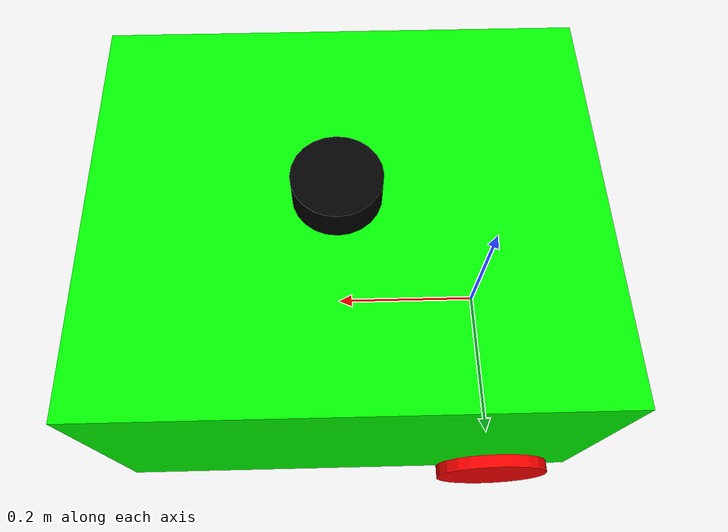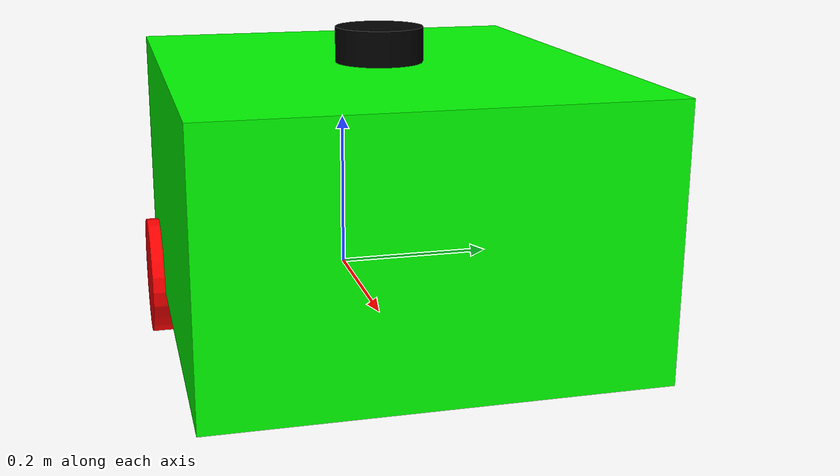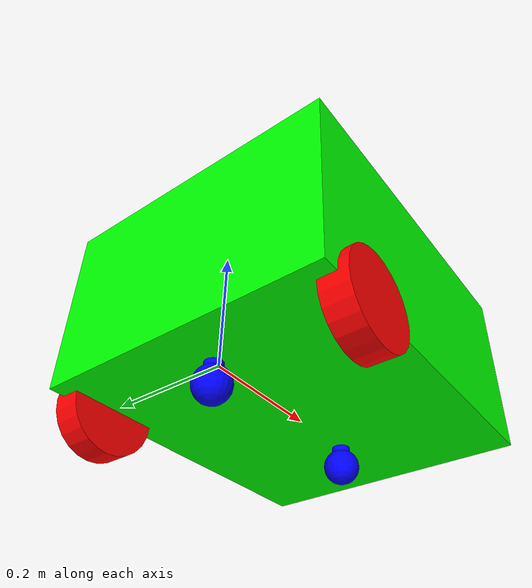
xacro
<?xml version="1.0"?>
<robot xmlns:xacro="http://www.ros.org/wiki/xacro" name="waiter_robot">

    <!-- Include all component files -->
    <xacro:include filename="properties.xacro"/>
    <xacro:include filename="inertial_macros.xacro"/>
    <xacro:include filename="chassis.xacro"/>
    <xacro:include filename="wheels.xacro"/>
    <xacro:include filename="caster_wheel.xacro"/>
    <xacro:include filename="lidar.xacro"/>

    <!-- Argument to switch between simulation and real hardware -->
    <xacro:arg name="use_sim" default="false"/>

    <!-- Include appropriate control interface based on use_sim argument -->
    <xacro:if value="$(arg use_sim)">
        <xacro:include filename="gazebo_control.xacro"/>  <!-- For Gazebo Fortress simulation -->
    </xacro:if>

    <xacro:unless value="$(arg use_sim)">
        <xacro:include filename="control.xacro"/>  <!-- For real robot with Arduino -->
    </xacro:unless>

    <!-- Base Link - Main reference frame for the robot -->
    <link name="base_link"/>

    <!-- Base Footprint Link - Projection of robot on the ground (for navigation) -->
    <link name="base_footprint"/>

    <!-- Joint connecting base_link to base_footprint -->
    <!-- IMPORTANT: This should place base_footprint on the ground, base_link at wheel axle height -->
    <joint name="base_footprint_joint" type="fixed">
        <parent link="base_link"/>
        <child link="base_footprint"/>
        <origin xyz="0 0 -0.0325" rpy="0 0 0"/>  <!-- Offset = -wheel_radius to put footprint on ground -->
    </joint>

</robot>

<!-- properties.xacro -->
<robot xmlns:xacro="http://www.ros.org/wiki/xacro">

                                <!-- Properties -->
    <!-- Chassis -->
    <xacro:property name="chassis_length" value="0.58"/>
    <xacro:property name="chassis_width" value="0.49"/>
    <xacro:property name="chassis_height" value="0.30"/>
    <xacro:property name="chassis_mass" value="15.0"/>
    <!-- Wheels -->
    <xacro:property name="wheel_offset_x" value="0.1"/>
    <xacro:property name="wheel_offset_y" value="0.238"/>
    <xacro:property name="wheel_offset_z" value="-0.025"/>
    <xacro:property name="wheel_thickness" value="0.045"/>
    <xacro:property name="wheel_radius" value="0.0738"/>
    <xacro:property name="wheel_mass" value="15.0"/>
    <!-- Front caster -->
    <xacro:property name="caster_front_radius" value="0.03"/>
    <xacro:property name="caster_front_mass" value="0.045"/>
    <xacro:property name="caster_front_offset_x" value="0.42"/>  <!-- front -->
    <xacro:property name="caster_front_offset_z" value="-0.035"/>

    <!-- Back caster -->
    <xacro:property name="caster_back_radius" value="0.03"/>
    <xacro:property name="caster_back_mass" value="0.045"/>
    <xacro:property name="caster_back_offset_x" value="0.09"/> <!-- back -->
    <xacro:property name="caster_back_offset_z" value="-0.035"/>

                                <!-- Colors -->
    <material name="white">
        <color rgba="1 1 1 1"/>
    </material>

    <material name="red">
        <color rgba="1 0 0 1"/>
    </material>

    <material name="green">
        <color rgba="0 1 0 1"/>
    </material>

    <material name="blue">
        <color rgba="0 0 1 1"/>
    </material>

    <material name="black">
        <color rgba="0 0 0 1"/>
    </material>
</robot>

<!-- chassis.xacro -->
<robot xmlns:xacro="http://www.ros.org/wiki/xacro">

    <!-- Chassis Link - Main body of the waiter robot -->
    <link name="chassis_link">

        <!-- Visual representation -->
        <visual>
            <geometry>
                <box size="${chassis_length} ${chassis_width} ${chassis_height}"/>
            </geometry>
            <origin xyz="${chassis_length/2} 0.0 ${chassis_height/2}"/>
            <material name="green"/>
        </visual>

        <!-- Collision geometry (for physics and obstacle detection) -->
        <collision>
            <geometry>
                <box size="${chassis_length} ${chassis_width} ${chassis_height}"/>
            </geometry>
            <origin xyz="${chassis_length/2} 0.0 ${chassis_height/2}"/>
        </collision>

        <!-- Inertial properties for physics simulation -->
        <xacro:inertial_box mass="${chassis_mass}"
                            x="${chassis_length}"
                            y="${chassis_width}"
                            z="${chassis_height}">
            <origin xyz="${chassis_length/2} 0 ${chassis_height/2}" rpy="0 0 0"/>
        </xacro:inertial_box>
    </link>

    <!-- Chassis Joint - Connects chassis to base_link -->
    <joint name="chassis_joint" type="fixed">
        <parent link="base_link"/>
        <child link="chassis_link"/>
        <origin xyz="-${wheel_offset_x} 0.0 0.0"/>  <!-- Positions chassis relative to wheel axle -->
    </joint>

    <!-- Gazebo-specific properties -->
    <gazebo reference="chassis_link">
        <material>Gazebo/Grey</material>  <!-- Visual appearance -->

        <!-- Surface contact properties -->
        <mu1>0.1</mu1>  <!-- Low friction - chassis shouldn't drag on ground -->
        <mu2>0.1</mu2>
        <kp>1000000.0</kp>  <!-- Contact stiffness -->
        <kd>100.0</kd>  <!-- Contact damping -->

        <!-- Make chassis slightly reflective for better visualization -->
        <gravity>true</gravity>
        <self_collide>false</self_collide>  <!-- Chassis won't collide with itself -->
    </gazebo>

</robot>

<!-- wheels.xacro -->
<robot xmlns:xacro="http://www.ros.org/wiki/xacro">

    <!-- Wheel Link Macro -->
    <xacro:macro name="wheel_link" params="link_name">
        <link name="${link_name}">
            <!-- Visual representation -->
            <visual>
                <geometry>
                    <cylinder radius="${wheel_radius}" length="${wheel_thickness}"/>
                </geometry>
                <material name="red"/>
            </visual>

            <!-- Collision geometry - IMPORTANT: Use cylinder, not sphere! -->
            <collision>
                <geometry>
                    <cylinder radius="${wheel_radius}" length="${wheel_thickness}"/>  <!-- Changed from sphere -->
                </geometry>
            </collision>

            <!-- Inertial properties for physics simulation -->
            <xacro:inertial_cylinder mass="${wheel_mass}" length="${wheel_thickness}" radius="${wheel_radius}">
                <origin xyz="0 0 0" rpy="0 0 0"/>
            </xacro:inertial_cylinder>
        </link>

        <!-- Gazebo-specific properties for realistic wheel physics -->
        <gazebo reference="${link_name}">
            <material>Gazebo/Black</material>  <!-- Visual appearance in Gazebo -->

            <!-- Friction coefficients for realistic wheel behavior -->
            <mu1>1.0</mu1>  <!-- Friction coefficient in primary direction (forward/backward) -->
            <mu2>1.0</mu2>  <!-- Friction coefficient in secondary direction (sideways) -->
            <kp>1000000.0</kp>  <!-- Contact stiffness (prevents sinking into ground) -->
            <kd>100.0</kd>  <!-- Contact damping (reduces bouncing) -->
            <minDepth>0.001</minDepth>  <!-- Minimum penetration before contact (prevents jitter) -->
            <maxVel>1.0</maxVel>  <!-- Maximum contact correction velocity -->

            <!-- Surface properties -->
            <fdir1>1 0 0</fdir1>  <!-- Primary friction direction (longitudinal) -->
        </gazebo>
    </xacro:macro>

    <!-- Wheel Joint Macro -->
    <xacro:macro name="wheel_joint" params="joint_name wheel_name y_offset">
        <joint name="${joint_name}" type="continuous">
            <origin xyz="0 ${y_offset} 0" rpy="${-pi/2} 0.0 0.0"/>  <!-- Rotates wheel to correct orientation -->
            <parent link="base_link"/>
            <child link="${wheel_name}"/>
            <axis xyz="0.0 0.0 1"/>  <!-- Rotation axis (Z in wheel's rotated frame = Y in base_link) -->

            <!-- Joint dynamics for smoother simulation -->
            <dynamics damping="0.1" friction="0.1"/>  <!-- Adds realistic resistance -->

            <!-- Joint limits (continuous = unlimited rotation) -->
            <limit effort="30" velocity="20.0"/>  <!-- Max torque: 30 Nm, Max velocity: 20 rad/s -->
        </joint>
    </xacro:macro>

    <!-- Left Wheel Link -->
    <xacro:wheel_link link_name="left_wheel_link"/>

    <!-- Left Wheel Joint -->
    <xacro:wheel_joint joint_name="left_wheel_joint" wheel_name="left_wheel_link" y_offset="${wheel_offset_y}"/>

    <!-- Right Wheel Link -->
    <xacro:wheel_link link_name="right_wheel_link"/>

    <!-- Right Wheel Joint -->
    <xacro:wheel_joint joint_name="right_wheel_joint" wheel_name="right_wheel_link" y_offset="${-wheel_offset_y}"/>

</robot>

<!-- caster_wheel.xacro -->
<robot xmlns:xacro="http://www.ros.org/wiki/xacro">

    <!-- ================= FRONT CASTER ================= -->
    <link name="caster_front_link">
        <visual>
            <origin xyz="0.0 0.0 0.0" rpy="0.0 0.0 0.0"/>
            <geometry>
                <sphere radius="${caster_front_radius}"/>
            </geometry>
            <material name="blue"/>
        </visual>
        <collision>
            <origin xyz="0.0 0.0 0.0" rpy="0.0 0.0 0.0"/>
            <geometry>
                <sphere radius="${caster_front_radius}"/>
            </geometry>
        </collision>

        <xacro:inertial_sphere mass="${caster_front_mass}" radius="${caster_front_radius}">
            <origin xyz="0.0 0.0 0.0" rpy="0.0 0.0 0.0"/>
        </xacro:inertial_sphere>
    </link>

    <joint name="caster_front_joint" type="fixed">
        <origin xyz="${caster_front_offset_x} 0.0 ${caster_front_offset_z}" rpy="0.0 0.0 0.0"/>
        <parent link="chassis_link"/>
        <child link="caster_front_link"/>
    </joint>

    <link name="caster_front_holder">
        <visual>
            <geometry>
                <cylinder radius="${caster_front_radius/2}" length="${caster_front_offset_z*2}"/>
            </geometry>
            <material name="blue"/>
        </visual>
    </link>
    <joint name="caster_front_holder_joint" type="fixed">
        <origin xyz="${caster_front_offset_x} 0.0 0.0" rpy="0.0 0.0 0.0"/>
        <parent link="chassis_link"/>
        <child link="caster_front_holder"/>
    </joint>

    <gazebo reference="caster_front_link">
        <mu1 value="0.001"/>
        <mu2 value="0.001"/>
    </gazebo>

    <!-- ================= BACK CASTER ================= -->
    <link name="caster_back_link">
        <visual>
            <origin xyz="0.0 0.0 0.0" rpy="0.0 0.0 0.0"/>
            <geometry>
                <sphere radius="${caster_back_radius}"/>
            </geometry>
            <material name="blue"/>
        </visual>
        <collision>
            <origin xyz="0.0 0.0 0.0" rpy="0.0 0.0 0.0"/>
            <geometry>
                <sphere radius="${caster_back_radius}"/>
            </geometry>
        </collision>

        <xacro:inertial_sphere mass="${caster_back_mass}" radius="${caster_back_radius}">
            <origin xyz="0.0 0.0 0.0" rpy="0.0 0.0 0.0"/>
        </xacro:inertial_sphere>
    </link>

    <joint name="caster_back_joint" type="fixed">
        <origin xyz="${caster_back_offset_x} 0.0 ${caster_back_offset_z}" rpy="0.0 0.0 0.0"/>
        <parent link="chassis_link"/>
        <child link="caster_back_link"/>
    </joint>

    <link name="caster_back_holder">
        <visual>
            <geometry>
                <cylinder radius="${caster_back_radius/2}" length="${caster_back_offset_z*2}"/>
            </geometry>
            <material name="blue"/>
        </visual>
    </link>
    <joint name="caster_back_holder_joint" type="fixed">
        <origin xyz="${caster_back_offset_x} 0.0 0.0" rpy="0.0 0.0 0.0"/>
        <parent link="chassis_link"/>
        <child link="caster_back_holder"/>
    </joint>

    <gazebo reference="caster_back_link">
        <mu1 value="0.001"/>
        <mu2 value="0.001"/>
    </gazebo>

</robot>

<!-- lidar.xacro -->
<robot xmlns:xacro="http://www.ros.org/wiki/xacro">

    <link name="laser_frame">
        <inertial>
            <mass value="0.125"/>
            <origin xyz="0 0 0" rpy="0 0 0"/>
            <inertia ixx="0.001" ixy="0" ixz="0" iyy="0.001" iyz="0" izz="0.001"/>
        </inertial>
        <collision>
            <geometry>
                <cylinder radius="0.05" length="0.04"/>
            </geometry>
        </collision>
        <visual>
            <geometry>
                <cylinder radius="0.05" length="0.04"/>
            </geometry>
            <material name="black"/>
        </visual>
    </link>

    <joint name="laser_joint" type="fixed">
        <parent link="chassis_link"/>
        <child link="laser_frame"/>
        <origin xyz="0.3 0 0.323" rpy="0 0 0"/>
    </joint>

    <gazebo reference="laser_frame">
        <material>Gazebo/Black</material>
        <sensor name="laser" type="gpu_lidar">
            <pose>0 0 0 0 0 0</pose>
            <topic>scan</topic>
            <gz_frame_id>laser_frame</gz_frame_id>  <!-- ✅ ADD THIS LINE -->
            <update_rate>10</update_rate>
            <lidar>
                <scan>
                    <horizontal>
                        <samples>360</samples>
                        <resolution>1</resolution>
                        <min_angle>-3.14159265</min_angle>
                        <max_angle>3.14159265</max_angle>
                    </horizontal>
                </scan>
                <range>
                    <min>0.15</min>
                    <max>12.0</max>
                    <resolution>0.01</resolution>
                </range>
            </lidar>
            <always_on>true</always_on>
            <visualize>true</visualize>
        </sensor>
    </gazebo>

</robot>
